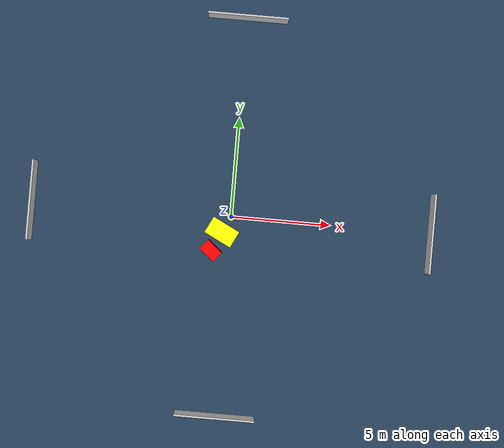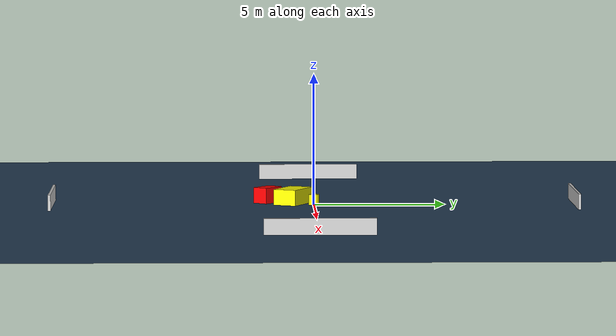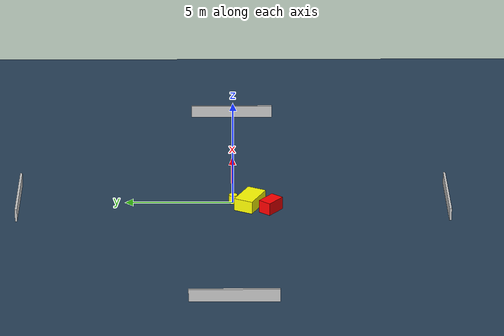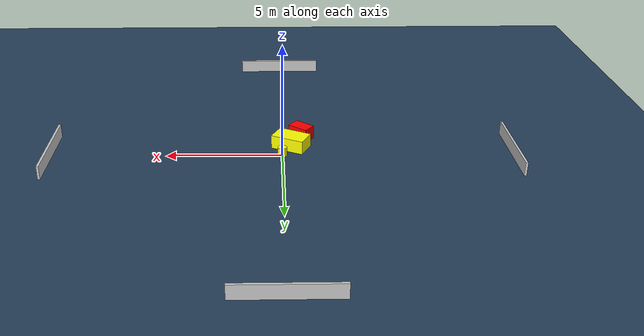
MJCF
<?xml version="1.0" ?>
<mujoco model="generated_environment">
  <option timestep="0.01" integrator="RK4" cone="elliptic"/>
  <default>
    <geom density="1"/>
  </default>
  <asset>
    <texture builtin="gradient" height="3072" name="skybox" rgb1="0.3 0.5 0.7" rgb2="0 0 0" type="skybox" width="512"/>
    <texture builtin="checker" height="300" name="groundplane" rgb1="0.2 0.3 0.4" rgb2="0.1 0.2 0.3" type="2d" width="300"/>
    <material name="groundplane" reflectance="0.2" texrepeat="5 5" texture="groundplane"/>
  </asset>
  <worldbody>
    <light dir="0 0 -1" directional="true" pos="0 0 1.5"/>
    <geom condim="3" friction="0.5 0.005 0.001" material="groundplane" name="floor" pos="0 0 0" size="0 0 0.05" type="plane"/>
    <body name="walls">
      <geom name="wall_1" condim="4" pos="-10.0 0.0 0.3" rgba="0.800000011920929 0.800000011920929 0.800000011920929 1.0" size="0.05 2.0 0.3" type="box"/>
      <geom name="wall_2" condim="4" pos="10.0 0.0 0.3" rgba="0.800000011920929 0.800000011920929 0.800000011920929 1.0" size="0.05 2.0 0.3" type="box"/>
      <geom name="wall_3" condim="4" pos="0.0 -10.0 0.3" rgba="0.800000011920929 0.800000011920929 0.800000011920929 1.0" size="2.0 0.05 0.3" type="box"/>
      <geom name="wall_4" condim="4" pos="0.0 10.0 0.3" rgba="0.800000011920929 0.800000011920929 0.800000011920929 1.0" size="2.0 0.05 0.3" type="box"/>
    </body>
    <body name="robot">
      <joint name="joint_x" type="slide" pos="0 0 0" axis="1 0 0"/>
      <joint name="joint_y" type="slide" pos="0 0 0" axis="0 1 0"/>
      <geom name="robot" type="cylinder" pos="0.0 0.0 0.2" size="0.2 0.2 0.0" mass="5.0" friction="1.0 0.005 0.0001" condim="4" rgba="1.0 1.0 0.0 1.0"/>
    </body>
    <body name="obstacle_1_movable">
      <geom name="obstacle_1_movable" condim="4" pos="-0.39396466465407315 -0.7898850837020728 0.3" euler="0 0 153.28157874660303" friction="0.0 0.005 0.001" rgba="1.0 1.0 0.0 1.0" size="0.7396952895831921 0.4544078079381776 0.3" type="box" mass="0.1"/>
      <joint type="free"/>
    </body>
    <body name="obstacle_2_static">
      <geom name="obstacle_2_static" condim="4" pos="-0.8749741554844117 -1.7452259550178575 0.3" euler="0 0 230.5852881383938" friction="0.0 0.005 0.001" rgba="1.0 0.0 0.0 1.0" size="0.3090956678036628 0.4776226703009094 0.3" type="box"/>
    </body>
  </worldbody>
  <actuator>
    <motor name="actuator_x" joint="joint_x" gear="1" ctrlrange="-1 1"/>
    <motor name="actuator_y" joint="joint_y" gear="1" ctrlrange="-1 1"/>
  </actuator>
</mujoco>
